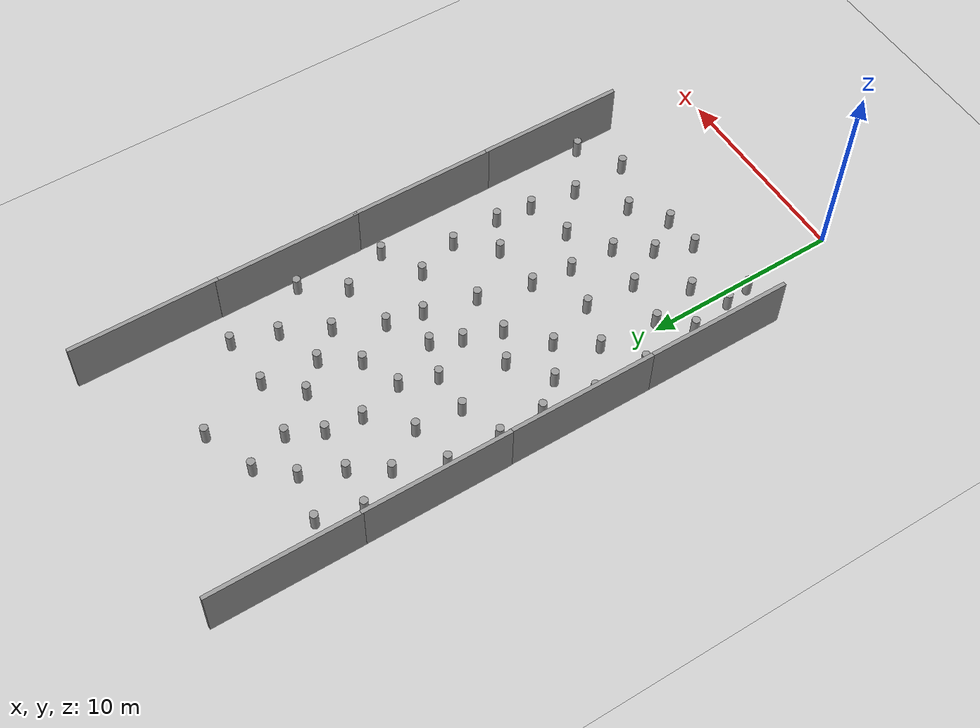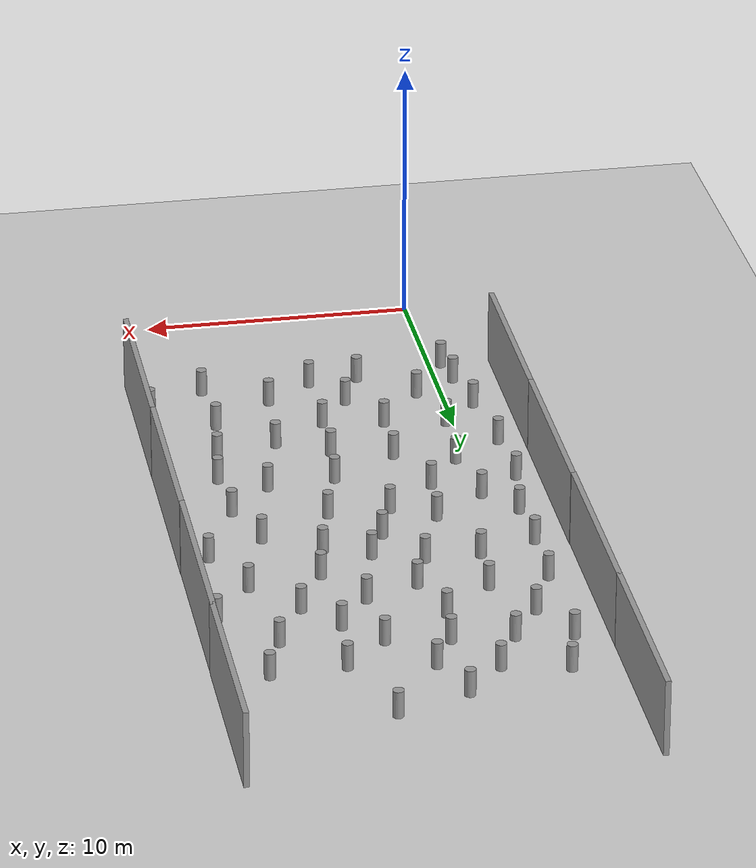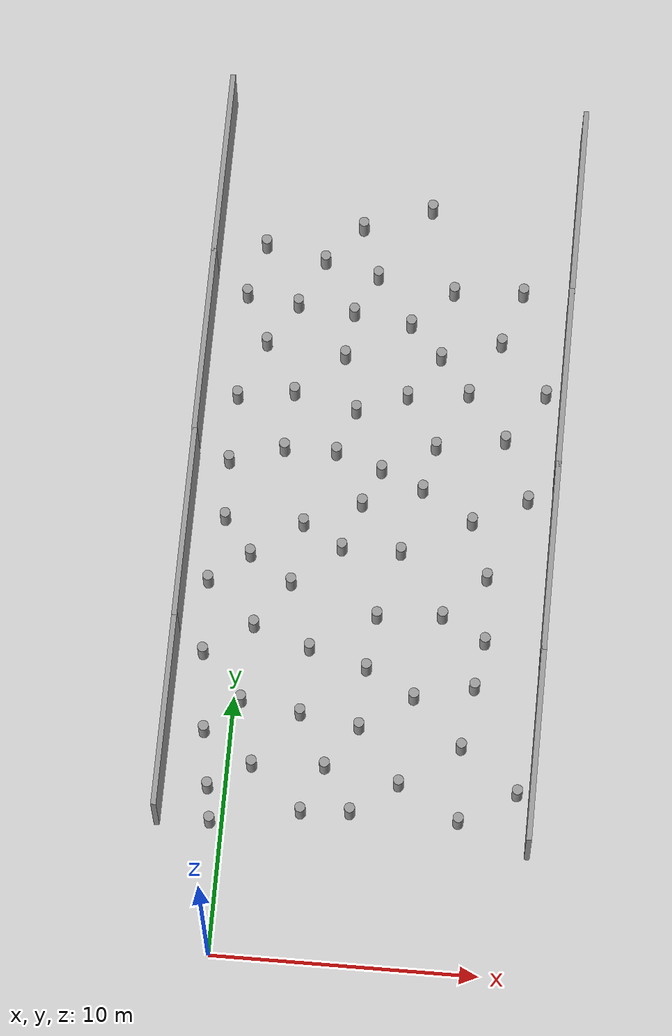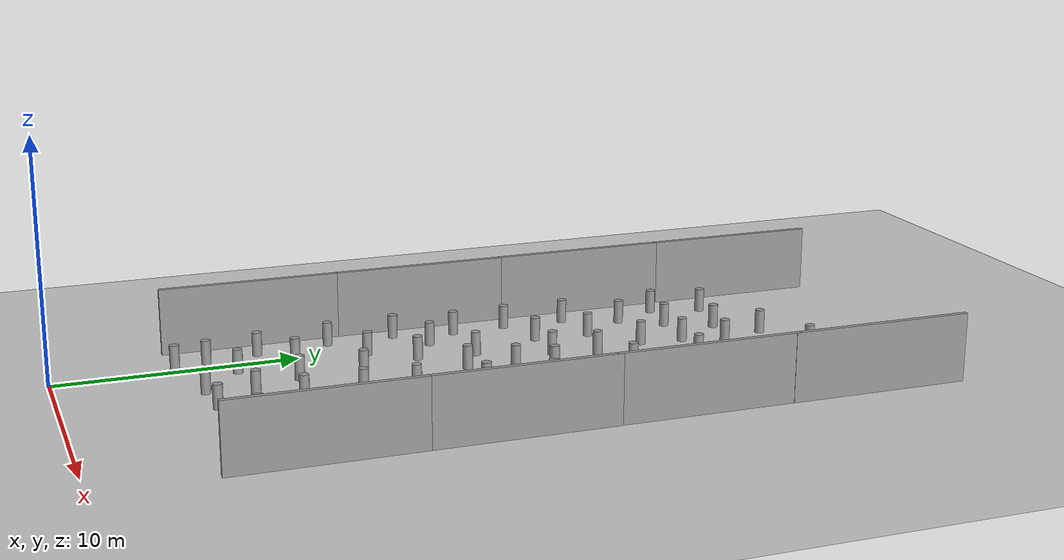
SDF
<sdf version="1.7">
 <world name="default">
  <model name="ground_plane">
   <static>1</static>
   <link name="link">
    <collision name="collision">
     <geometry><plane><normal>0 0 1</normal><size>100 100</size></plane></geometry>
     <surface><friction><ode><mu>100</mu><mu2>50</mu2></ode></friction></surface>
    </collision>
    <visual name="visual">
     <cast_shadows>0</cast_shadows>
     <geometry><plane><normal>0 0 1</normal><size>100 100</size></plane></geometry>
     <material>
      <script><uri>file://media/materials/scripts/gazebo.material</uri><name>Gazebo/Grey</name></script>
     </material>
    </visual>
   </link>
  </model>
  <gravity>0 0 -9.8</gravity>
  <magnetic_field>6e-06 2.3e-05 -4.2e-05</magnetic_field>
  <atmosphere type="adiabatic"/>
  <physics type="ode">
   <max_step_size>0.001</max_step_size>
   <real_time_factor>1</real_time_factor>
   <real_time_update_rate>1000</real_time_update_rate>
  </physics>
  <scene><ambient>0.4 0.4 0.4 1</ambient><background>0.7 0.7 0.7 1</background><shadows>1</shadows></scene>
  <audio><device>default</device></audio>
  <spherical_coordinates>
   <surface_model>EARTH_WGS84</surface_model>
   <latitude_deg>0</latitude_deg>
   <longitude_deg>0</longitude_deg>
   <elevation>0</elevation>
   <heading_deg>0</heading_deg>
  </spherical_coordinates>
  <light name="user_directional_light_0" type="directional">
   <pose>0.477999 -47.7087 1 0 -0 0</pose>
   <diffuse>0.5 0.5 0.5 1</diffuse>
   <specular>0.1 0.1 0.1 1</specular>
   <direction>0.1 0.1 -0.9</direction>
   <attenuation>
    <range>20</range>
    <constant>0.5</constant>
    <linear>0.01</linear>
    <quadratic>0.001</quadratic>
   </attenuation>
   <spot><inner_angle>0</inner_angle><outer_angle>0</outer_angle><falloff>0</falloff></spot>
  </light>
  <light name="user_directional_light_1" type="directional">
   <pose>0.412443 -47.5881 1 0 -0 0</pose>
   <diffuse>0.5 0.5 0.5 1</diffuse>
   <specular>0.1 0.1 0.1 1</specular>
   <direction>0.1 0.1 -0.9</direction>
   <attenuation>
    <range>20</range>
    <constant>0.5</constant>
    <linear>0.01</linear>
    <quadratic>0.001</quadratic>
   </attenuation>
   <spot><inner_angle>0</inner_angle><outer_angle>0</outer_angle><falloff>0</falloff></spot>
  </light>
  <light name="user_directional_light_2" type="directional">
   <pose>0.088321 -47.4159 1 0 -0 0</pose>
   <diffuse>0.5 0.5 0.5 1</diffuse>
   <specular>0.1 0.1 0.1 1</specular>
   <direction>0.1 0.1 -0.9</direction>
   <attenuation>
    <range>20</range>
    <constant>0.5</constant>
    <linear>0.01</linear>
    <quadratic>0.001</quadratic>
   </attenuation>
   <spot><inner_angle>0</inner_angle><outer_angle>0</outer_angle><falloff>0</falloff></spot>
  </light>
  <light name="user_directional_light_3" type="directional">
   <pose>0.088445 -47.4056 1 0 -0 0</pose>
   <diffuse>0.5 0.5 0.5 1</diffuse>
   <specular>0.1 0.1 0.1 1</specular>
   <direction>0.1 0.1 -0.9</direction>
   <attenuation>
    <range>20</range>
    <constant>0.5</constant>
    <linear>0.01</linear>
    <quadratic>0.001</quadratic>
   </attenuation>
   <spot><inner_angle>0</inner_angle><outer_angle>0</outer_angle><falloff>0</falloff></spot>
  </light>
  <light name="user_directional_light_4" type="directional">
   <pose>0.348006 -47.5821 1 0 -0 0</pose>
   <diffuse>0.5 0.5 0.5 1</diffuse>
   <specular>0.1 0.1 0.1 1</specular>
   <direction>0.1 0.1 -0.9</direction>
   <attenuation>
    <range>20</range>
    <constant>0.5</constant>
    <linear>0.01</linear>
    <quadratic>0.001</quadratic>
   </attenuation>
   <spot><inner_angle>0</inner_angle><outer_angle>0</outer_angle><falloff>0</falloff></spot>
  </light>
  <light name="user_directional_light_5" type="directional">
   <pose>0.255718 -47.7811 1 0 -0 0</pose>
   <diffuse>0.5 0.5 0.5 1</diffuse>
   <specular>0.1 0.1 0.1 1</specular>
   <direction>0.1 0.1 -0.9</direction>
   <attenuation>
    <range>20</range>
    <constant>0.5</constant>
    <linear>0.01</linear>
    <quadratic>0.001</quadratic>
   </attenuation>
   <spot><inner_angle>0</inner_angle><outer_angle>0</outer_angle><falloff>0</falloff></spot>
  </light>
  <light name="user_directional_light_6" type="directional">
   <pose>0.17002 -47.8026 1 0 -0 0</pose>
   <diffuse>0.5 0.5 0.5 1</diffuse>
   <specular>0.1 0.1 0.1 1</specular>
   <direction>0.1 0.1 -0.9</direction>
   <attenuation>
    <range>20</range>
    <constant>0.5</constant>
    <linear>0.01</linear>
    <quadratic>0.001</quadratic>
   </attenuation>
   <spot><inner_angle>0</inner_angle><outer_angle>0</outer_angle><falloff>0</falloff></spot>
  </light>
  <model name="unit_cylinder_clone_0">
   <pose>4.78695 9.09994 0.499993 0 -0 1.1e-05</pose>
   <link name="link">
    <inertial>
     <mass>1</mass>
     <inertia><ixx>0.145833</ixx><ixy>0</ixy><ixz>0</ixz><iyy>0.145833</iyy><iyz>0</iyz><izz>0.125</izz></inertia>
    </inertial>
    <collision name="collision">
     <geometry><cylinder><radius>0.19793</radius><length>1</length></cylinder></geometry>
    </collision>
    <visual name="visual">
     <geometry><cylinder><radius>0.19793</radius><length>1</length></cylinder></geometry>
     <material>
      <script><name>Gazebo/Grey</name><uri>file://media/materials/scripts/gazebo.material</uri></script>
     </material>
    </visual>
   </link>
  </model>
  <model name="unit_cylinder_clone_1">
   <pose>2.66479 12.0412 0.499997 0 -0 1.1e-05</pose>
   <link name="link">
    <inertial>
     <mass>1</mass>
     <inertia><ixx>0.145833</ixx><ixy>0</ixy><ixz>0</ixz><iyy>0.145833</iyy><iyz>0</iyz><izz>0.125</izz></inertia>
    </inertial>
    <collision name="collision">
     <geometry><cylinder><radius>0.19793</radius><length>1</length></cylinder></geometry>
    </collision>
    <visual name="visual">
     <geometry><cylinder><radius>0.19793</radius><length>1</length></cylinder></geometry>
     <material>
      <script><name>Gazebo/Grey</name><uri>file://media/materials/scripts/gazebo.material</uri></script>
     </material>
    </visual>
   </link>
  </model>
  <model name="unit_cylinder_clone_2">
   <pose>5.09572 13.5123 0.499993 0 -0 1.1e-05</pose>
   <link name="link">
    <inertial>
     <mass>1</mass>
     <inertia><ixx>0.145833</ixx><ixy>0</ixy><ixz>0</ixz><iyy>0.145833</iyy><iyz>0</iyz><izz>0.125</izz></inertia>
    </inertial>
    <collision name="collision">
     <geometry><cylinder><radius>0.19793</radius><length>1</length></cylinder></geometry>
    </collision>
    <visual name="visual">
     <geometry><cylinder><radius>0.19793</radius><length>1</length></cylinder></geometry>
     <material>
      <script><name>Gazebo/Grey</name><uri>file://media/materials/scripts/gazebo.material</uri></script>
     </material>
    </visual>
   </link>
  </model>
  <model name="unit_cylinder_clone_3">
   <pose>3.5408 16.1391 0.499997 0 -0 1.1e-05</pose>
   <link name="link">
    <inertial>
     <mass>1</mass>
     <inertia><ixx>0.145833</ixx><ixy>0</ixy><ixz>0</ixz><iyy>0.145833</iyy><iyz>0</iyz><izz>0.125</izz></inertia>
    </inertial>
    <collision name="collision">
     <geometry><cylinder><radius>0.19793</radius><length>1</length></cylinder></geometry>
    </collision>
    <visual name="visual">
     <geometry><cylinder><radius>0.19793</radius><length>1</length></cylinder></geometry>
     <material>
      <script><name>Gazebo/Grey</name><uri>file://media/materials/scripts/gazebo.material</uri></script>
     </material>
    </visual>
   </link>
  </model>
  <model name="unit_cylinder_clone_4">
   <pose>0.487119 12.7888 0.499993 0 -0 1.1e-05</pose>
   <link name="link">
    <inertial>
     <mass>1</mass>
     <inertia><ixx>0.145833</ixx><ixy>0</ixy><ixz>0</ixz><iyy>0.145833</iyy><iyz>0</iyz><izz>0.125</izz></inertia>
    </inertial>
    <collision name="collision">
     <geometry><cylinder><radius>0.19793</radius><length>1</length></cylinder></geometry>
    </collision>
    <visual name="visual">
     <geometry><cylinder><radius>0.19793</radius><length>1</length></cylinder></geometry>
     <material>
      <script><name>Gazebo/Grey</name><uri>file://media/materials/scripts/gazebo.material</uri></script>
     </material>
    </visual>
   </link>
  </model>
  <model name="unit_cylinder_clone_5">
   <pose>0.274245 9.79924 0.499997 0 -0 1.1e-05</pose>
   <link name="link">
    <inertial>
     <mass>1</mass>
     <inertia><ixx>0.145833</ixx><ixy>0</ixy><ixz>0</ixz><iyy>0.145833</iyy><iyz>0</iyz><izz>0.125</izz></inertia>
    </inertial>
    <collision name="collision">
     <geometry><cylinder><radius>0.19793</radius><length>1</length></cylinder></geometry>
    </collision>
    <visual name="visual">
     <geometry><cylinder><radius>0.19793</radius><length>1</length></cylinder></geometry>
     <material>
      <script><name>Gazebo/Grey</name><uri>file://media/materials/scripts/gazebo.material</uri></script>
     </material>
    </visual>
   </link>
  </model>
  <model name="unit_cylinder_clone_6">
   <pose>-1 8.49556 0.499993 0 -0 1.1e-05</pose>
   <link name="link">
    <inertial>
     <mass>1</mass>
     <inertia><ixx>0.145833</ixx><ixy>0</ixy><ixz>0</ixz><iyy>0.145833</iyy><iyz>0</iyz><izz>0.125</izz></inertia>
    </inertial>
    <collision name="collision">
     <geometry><cylinder><radius>0.19793</radius><length>1</length></cylinder></geometry>
    </collision>
    <visual name="visual">
     <geometry><cylinder><radius>0.19793</radius><length>1</length></cylinder></geometry>
     <material>
      <script><name>Gazebo/Grey</name><uri>file://media/materials/scripts/gazebo.material</uri></script>
     </material>
    </visual>
   </link>
  </model>
  <model name="unit_cylinder_clone_7">
   <pose>6.74765 10.429 0.499997 0 -0 1.1e-05</pose>
   <link name="link">
    <inertial>
     <mass>1</mass>
     <inertia><ixx>0.145833</ixx><ixy>0</ixy><ixz>0</ixz><iyy>0.145833</iyy><iyz>0</iyz><izz>0.125</izz></inertia>
    </inertial>
    <collision name="collision">
     <geometry><cylinder><radius>0.19793</radius><length>1</length></cylinder></geometry>
    </collision>
    <visual name="visual">
     <geometry><cylinder><radius>0.19793</radius><length>1</length></cylinder></geometry>
     <material>
      <script><name>Gazebo/Grey</name><uri>file://media/materials/scripts/gazebo.material</uri></script>
     </material>
    </visual>
   </link>
  </model>
  <model name="unit_cylinder_clone_8">
   <pose>7.57568 13.7201 0.499993 0 -0 1.1e-05</pose>
   <link name="link">
    <inertial>
     <mass>1</mass>
     <inertia><ixx>0.145833</ixx><ixy>0</ixy><ixz>0</ixz><iyy>0.145833</iyy><iyz>0</iyz><izz>0.125</izz></inertia>
    </inertial>
    <collision name="collision">
     <geometry><cylinder><radius>0.19793</radius><length>1</length></cylinder></geometry>
    </collision>
    <visual name="visual">
     <geometry><cylinder><radius>0.19793</radius><length>1</length></cylinder></geometry>
     <material>
      <script><name>Gazebo/Grey</name><uri>file://media/materials/scripts/gazebo.material</uri></script>
     </material>
    </visual>
   </link>
  </model>
  <model name="unit_cylinder_clone_9">
   <pose>6.42971 18.7387 0.499997 0 -0 1.1e-05</pose>
   <link name="link">
    <inertial>
     <mass>1</mass>
     <inertia><ixx>0.145833</ixx><ixy>0</ixy><ixz>0</ixz><iyy>0.145833</iyy><iyz>0</iyz><izz>0.125</izz></inertia>
    </inertial>
    <collision name="collision">
     <geometry><cylinder><radius>0.19793</radius><length>1</length></cylinder></geometry>
    </collision>
    <visual name="visual">
     <geometry><cylinder><radius>0.19793</radius><length>1</length></cylinder></geometry>
     <material>
      <script><name>Gazebo/Grey</name><uri>file://media/materials/scripts/gazebo.material</uri></script>
     </material>
    </visual>
   </link>
  </model>
  <model name="unit_cylinder_clone_10">
   <pose>1 20 0.499993 0 -0 1e-05</pose>
   <link name="link">
    <inertial>
     <mass>1</mass>
     <inertia><ixx>0.145833</ixx><ixy>0</ixy><ixz>0</ixz><iyy>0.145833</iyy><iyz>0</iyz><izz>0.125</izz></inertia>
    </inertial>
    <collision name="collision">
     <geometry><cylinder><radius>0.19793</radius><length>1</length></cylinder></geometry>
    </collision>
    <visual name="visual">
     <geometry><cylinder><radius>0.19793</radius><length>1</length></cylinder></geometry>
     <material>
      <script><name>Gazebo/Grey</name><uri>file://media/materials/scripts/gazebo.material</uri></script>
     </material>
    </visual>
   </link>
  </model>
  <model name="unit_cylinder_clone_11">
   <pose>3 20 0.499993 0 -0 1e-05</pose>
   <link name="link">
    <inertial>
     <mass>1</mass>
     <inertia><ixx>0.145833</ixx><ixy>0</ixy><ixz>0</ixz><iyy>0.145833</iyy><iyz>0</iyz><izz>0.125</izz></inertia>
    </inertial>
    <collision name="collision">
     <geometry><cylinder><radius>0.19793</radius><length>1</length></cylinder></geometry>
    </collision>
    <visual name="visual">
     <geometry><cylinder><radius>0.19793</radius><length>1</length></cylinder></geometry>
     <material>
      <script><name>Gazebo/Grey</name><uri>file://media/materials/scripts/gazebo.material</uri></script>
     </material>
    </visual>
   </link>
  </model>
  <model name="unit_cylinder_clone_12">
   <pose>5.5409 22.5279 0.499993 0 -0 1e-05</pose>
   <link name="link">
    <inertial>
     <mass>1</mass>
     <inertia><ixx>0.145833</ixx><ixy>0</ixy><ixz>0</ixz><iyy>0.145833</iyy><iyz>0</iyz><izz>0.125</izz></inertia>
    </inertial>
    <collision name="collision">
     <geometry><cylinder><radius>0.19793</radius><length>1</length></cylinder></geometry>
    </collision>
    <visual name="visual">
     <geometry><cylinder><radius>0.19793</radius><length>1</length></cylinder></geometry>
     <material>
      <script><name>Gazebo/Grey</name><uri>file://media/materials/scripts/gazebo.material</uri></script>
     </material>
    </visual>
   </link>
  </model>
  <model name="unit_cylinder_clone_13">
   <pose>2 17 0.499993 0 -0 1e-05</pose>
   <link name="link">
    <inertial>
     <mass>1</mass>
     <inertia><ixx>0.145833</ixx><ixy>0</ixy><ixz>0</ixz><iyy>0.145833</iyy><iyz>0</iyz><izz>0.125</izz></inertia>
    </inertial>
    <collision name="collision">
     <geometry><cylinder><radius>0.19793</radius><length>1</length></cylinder></geometry>
    </collision>
    <visual name="visual">
     <geometry><cylinder><radius>0.19793</radius><length>1</length></cylinder></geometry>
     <material>
      <script><name>Gazebo/Grey</name><uri>file://media/materials/scripts/gazebo.material</uri></script>
     </material>
    </visual>
   </link>
  </model>
  <model name="unit_cylinder_clone_14">
   <pose>-1 17 0.499997 0 -0 1e-05</pose>
   <link name="link">
    <inertial>
     <mass>1</mass>
     <inertia><ixx>0.145833</ixx><ixy>0</ixy><ixz>0</ixz><iyy>0.145833</iyy><iyz>0</iyz><izz>0.125</izz></inertia>
    </inertial>
    <collision name="collision">
     <geometry><cylinder><radius>0.19793</radius><length>1</length></cylinder></geometry>
    </collision>
    <visual name="visual">
     <geometry><cylinder><radius>0.19793</radius><length>1</length></cylinder></geometry>
     <material>
      <script><name>Gazebo/Grey</name><uri>file://media/materials/scripts/gazebo.material</uri></script>
     </material>
    </visual>
   </link>
  </model>
  <model name="unit_cylinder_clone_15">
   <pose>-1 22 0.499997 0 -0 1e-05</pose>
   <link name="link">
    <inertial>
     <mass>1</mass>
     <inertia><ixx>0.145833</ixx><ixy>0</ixy><ixz>0</ixz><iyy>0.145833</iyy><iyz>0</iyz><izz>0.125</izz></inertia>
    </inertial>
    <collision name="collision">
     <geometry><cylinder><radius>0.19793</radius><length>1</length></cylinder></geometry>
    </collision>
    <visual name="visual">
     <geometry><cylinder><radius>0.19793</radius><length>1</length></cylinder></geometry>
     <material>
      <script><name>Gazebo/Grey</name><uri>file://media/materials/scripts/gazebo.material</uri></script>
     </material>
    </visual>
   </link>
  </model>
  <model name="unit_cylinder_clone_16">
   <pose>1 26 0.499997 0 -0 1e-05</pose>
   <link name="link">
    <inertial>
     <mass>1</mass>
     <inertia><ixx>0.145833</ixx><ixy>0</ixy><ixz>0</ixz><iyy>0.145833</iyy><iyz>0</iyz><izz>0.125</izz></inertia>
    </inertial>
    <collision name="collision">
     <geometry><cylinder><radius>0.19793</radius><length>1</length></cylinder></geometry>
    </collision>
    <visual name="visual">
     <geometry><cylinder><radius>0.19793</radius><length>1</length></cylinder></geometry>
     <material>
      <script><name>Gazebo/Grey</name><uri>file://media/materials/scripts/gazebo.material</uri></script>
     </material>
    </visual>
   </link>
  </model>
  <model name="unit_cylinder_clone_17">
   <pose>4 27.4252 0.499997 0 -0 1e-05</pose>
   <link name="link">
    <inertial>
     <mass>1</mass>
     <inertia><ixx>0.145833</ixx><ixy>0</ixy><ixz>0</ixz><iyy>0.145833</iyy><iyz>0</iyz><izz>0.125</izz></inertia>
    </inertial>
    <collision name="collision">
     <geometry><cylinder><radius>0.19793</radius><length>1</length></cylinder></geometry>
    </collision>
    <visual name="visual">
     <geometry><cylinder><radius>0.19793</radius><length>1</length></cylinder></geometry>
     <material>
      <script><name>Gazebo/Grey</name><uri>file://media/materials/scripts/gazebo.material</uri></script>
     </material>
    </visual>
   </link>
  </model>
  <model name="unit_cylinder_clone_18">
   <pose>7 27 0.499993 0 -0 1e-05</pose>
   <link name="link">
    <inertial>
     <mass>1</mass>
     <inertia><ixx>0.145833</ixx><ixy>0</ixy><ixz>0</ixz><iyy>0.145833</iyy><iyz>0</iyz><izz>0.125</izz></inertia>
    </inertial>
    <collision name="collision">
     <geometry><cylinder><radius>0.19793</radius><length>1</length></cylinder></geometry>
    </collision>
    <visual name="visual">
     <geometry><cylinder><radius>0.19793</radius><length>1</length></cylinder></geometry>
     <material>
      <script><name>Gazebo/Grey</name><uri>file://media/materials/scripts/gazebo.material</uri></script>
     </material>
    </visual>
   </link>
  </model>
  <model name="unit_cylinder_clone_19">
   <pose>9 25 0.499997 0 -0 1e-05</pose>
   <link name="link">
    <inertial>
     <mass>1</mass>
     <inertia><ixx>0.145833</ixx><ixy>0</ixy><ixz>0</ixz><iyy>0.145833</iyy><iyz>0</iyz><izz>0.125</izz></inertia>
    </inertial>
    <collision name="collision">
     <geometry><cylinder><radius>0.19793</radius><length>1</length></cylinder></geometry>
    </collision>
    <visual name="visual">
     <geometry><cylinder><radius>0.19793</radius><length>1</length></cylinder></geometry>
     <material>
      <script><name>Gazebo/Grey</name><uri>file://media/materials/scripts/gazebo.material</uri></script>
     </material>
    </visual>
   </link>
  </model>
  <model name="unit_cylinder_clone_20">
   <pose>9.43338 21 0.499997 0 -0 1e-05</pose>
   <link name="link">
    <inertial>
     <mass>1</mass>
     <inertia><ixx>0.145833</ixx><ixy>0</ixy><ixz>0</ixz><iyy>0.145833</iyy><iyz>0</iyz><izz>0.125</izz></inertia>
    </inertial>
    <collision name="collision">
     <geometry><cylinder><radius>0.19793</radius><length>1</length></cylinder></geometry>
    </collision>
    <visual name="visual">
     <geometry><cylinder><radius>0.19793</radius><length>1</length></cylinder></geometry>
     <material>
      <script><name>Gazebo/Grey</name><uri>file://media/materials/scripts/gazebo.material</uri></script>
     </material>
    </visual>
   </link>
  </model>
  <model name="unit_cylinder_clone_21">
   <pose>8.41458 17.5736 0.499997 0 -0 1e-05</pose>
   <link name="link">
    <inertial>
     <mass>1</mass>
     <inertia><ixx>0.145833</ixx><ixy>0</ixy><ixz>0</ixz><iyy>0.145833</iyy><iyz>0</iyz><izz>0.125</izz></inertia>
    </inertial>
    <collision name="collision">
     <geometry><cylinder><radius>0.19793</radius><length>1</length></cylinder></geometry>
    </collision>
    <visual name="visual">
     <geometry><cylinder><radius>0.19793</radius><length>1</length></cylinder></geometry>
     <material>
      <script><name>Gazebo/Grey</name><uri>file://media/materials/scripts/gazebo.material</uri></script>
     </material>
    </visual>
   </link>
  </model>
  <model name="unit_cylinder_clone_22">
   <pose>3 24 0.499993 0 -0 1e-05</pose>
   <link name="link">
    <inertial>
     <mass>1</mass>
     <inertia><ixx>0.145833</ixx><ixy>0</ixy><ixz>0</ixz><iyy>0.145833</iyy><iyz>0</iyz><izz>0.125</izz></inertia>
    </inertial>
    <collision name="collision">
     <geometry><cylinder><radius>0.19793</radius><length>1</length></cylinder></geometry>
    </collision>
    <visual name="visual">
     <geometry><cylinder><radius>0.19793</radius><length>1</length></cylinder></geometry>
     <material>
      <script><name>Gazebo/Grey</name><uri>file://media/materials/scripts/gazebo.material</uri></script>
     </material>
    </visual>
   </link>
  </model>
  <model name="unit_cylinder_clone_23">
   <pose>-0.451325 5.01047 0.499997 0 -0 1e-05</pose>
   <link name="link">
    <inertial>
     <mass>1</mass>
     <inertia><ixx>0.145833</ixx><ixy>0</ixy><ixz>0</ixz><iyy>0.145833</iyy><iyz>0</iyz><izz>0.125</izz></inertia>
    </inertial>
    <collision name="collision">
     <geometry><cylinder><radius>0.19793</radius><length>1</length></cylinder></geometry>
    </collision>
    <visual name="visual">
     <geometry><cylinder><radius>0.19793</radius><length>1</length></cylinder></geometry>
     <material>
      <script><name>Gazebo/Grey</name><uri>file://media/materials/scripts/gazebo.material</uri></script>
     </material>
    </visual>
   </link>
  </model>
  <model name="unit_cylinder_clone_24">
   <pose>-0.657877 6.32538 0.499997 0 -0 1e-05</pose>
   <link name="link">
    <inertial>
     <mass>1</mass>
     <inertia><ixx>0.145833</ixx><ixy>0</ixy><ixz>0</ixz><iyy>0.145833</iyy><iyz>0</iyz><izz>0.125</izz></inertia>
    </inertial>
    <collision name="collision">
     <geometry><cylinder><radius>0.19793</radius><length>1</length></cylinder></geometry>
    </collision>
    <visual name="visual">
     <geometry><cylinder><radius>0.19793</radius><length>1</length></cylinder></geometry>
     <material>
      <script><name>Gazebo/Grey</name><uri>file://media/materials/scripts/gazebo.material</uri></script>
     </material>
    </visual>
   </link>
  </model>
  <model name="unit_cylinder_clone_25">
   <pose>4.7253 5.7723 0.499993 0 -0 1e-05</pose>
   <link name="link">
    <inertial>
     <mass>1</mass>
     <inertia><ixx>0.145833</ixx><ixy>0</ixy><ixz>0</ixz><iyy>0.145833</iyy><iyz>0</iyz><izz>0.125</izz></inertia>
    </inertial>
    <collision name="collision">
     <geometry><cylinder><radius>0.19793</radius><length>1</length></cylinder></geometry>
    </collision>
    <visual name="visual">
     <geometry><cylinder><radius>0.19793</radius><length>1</length></cylinder></geometry>
     <material>
      <script><name>Gazebo/Grey</name><uri>file://media/materials/scripts/gazebo.material</uri></script>
     </material>
    </visual>
   </link>
  </model>
  <model name="unit_cylinder_clone_26">
   <pose>6.44838 7 0.499993 0 -0 9e-06</pose>
   <link name="link">
    <inertial>
     <mass>1</mass>
     <inertia><ixx>0.145833</ixx><ixy>0</ixy><ixz>0</ixz><iyy>0.145833</iyy><iyz>0</iyz><izz>0.125</izz></inertia>
    </inertial>
    <collision name="collision">
     <geometry><cylinder><radius>0.19793</radius><length>1</length></cylinder></geometry>
    </collision>
    <visual name="visual">
     <geometry><cylinder><radius>0.19793</radius><length>1</length></cylinder></geometry>
     <material>
      <script><name>Gazebo/Grey</name><uri>file://media/materials/scripts/gazebo.material</uri></script>
     </material>
    </visual>
   </link>
  </model>
  <model name="unit_cylinder_clone_27">
   <pose>2.53815 9.45269 0.499997 0 -0 9e-06</pose>
   <link name="link">
    <inertial>
     <mass>1</mass>
     <inertia><ixx>0.145833</ixx><ixy>0</ixy><ixz>0</ixz><iyy>0.145833</iyy><iyz>0</iyz><izz>0.125</izz></inertia>
    </inertial>
    <collision name="collision">
     <geometry><cylinder><radius>0.19793</radius><length>1</length></cylinder></geometry>
    </collision>
    <visual name="visual">
     <geometry><cylinder><radius>0.19793</radius><length>1</length></cylinder></geometry>
     <material>
      <script><name>Gazebo/Grey</name><uri>file://media/materials/scripts/gazebo.material</uri></script>
     </material>
    </visual>
   </link>
  </model>
  <model name="unit_cylinder_clone_28">
   <pose>5.79612 16.1516 0.499993 0 -0 9e-06</pose>
   <link name="link">
    <inertial>
     <mass>1</mass>
     <inertia><ixx>0.145833</ixx><ixy>0</ixy><ixz>0</ixz><iyy>0.145833</iyy><iyz>0</iyz><izz>0.125</izz></inertia>
    </inertial>
    <collision name="collision">
     <geometry><cylinder><radius>0.19793</radius><length>1</length></cylinder></geometry>
    </collision>
    <visual name="visual">
     <geometry><cylinder><radius>0.19793</radius><length>1</length></cylinder></geometry>
     <material>
      <script><name>Gazebo/Grey</name><uri>file://media/materials/scripts/gazebo.material</uri></script>
     </material>
    </visual>
   </link>
  </model>
  <model name="unit_cylinder_clone">
   <pose>0.908682 7.30719 0.499997 0 -0 9e-06</pose>
   <link name="link">
    <inertial>
     <mass>1</mass>
     <inertia><ixx>0.145833</ixx><ixy>0</ixy><ixz>0</ixz><iyy>0.145833</iyy><iyz>0</iyz><izz>0.125</izz></inertia>
    </inertial>
    <collision name="collision">
     <geometry><cylinder><radius>0.19793</radius><length>1</length></cylinder></geometry>
    </collision>
    <visual name="visual">
     <geometry><cylinder><radius>0.19793</radius><length>1</length></cylinder></geometry>
     <material>
      <script><name>Gazebo/Grey</name><uri>file://media/materials/scripts/gazebo.material</uri></script>
     </material>
    </visual>
   </link>
  </model>
  <model name="unit_cylinder_clone_clone">
   <pose>2.88935 5.6457 0.499993 0 -0 9e-06</pose>
   <link name="link">
    <inertial>
     <mass>1</mass>
     <inertia><ixx>0.145833</ixx><ixy>0</ixy><ixz>0</ixz><iyy>0.145833</iyy><iyz>0</iyz><izz>0.125</izz></inertia>
    </inertial>
    <collision name="collision">
     <geometry><cylinder><radius>0.19793</radius><length>1</length></cylinder></geometry>
    </collision>
    <visual name="visual">
     <geometry><cylinder><radius>0.19793</radius><length>1</length></cylinder></geometry>
     <material>
      <script><name>Gazebo/Grey</name><uri>file://media/materials/scripts/gazebo.material</uri></script>
     </material>
    </visual>
   </link>
  </model>
  <model name="unit_cylinder_clone_clone_0">
   <pose>4.79174 19.4083 0.499997 0 -0 8e-06</pose>
   <link name="link">
    <inertial>
     <mass>1</mass>
     <inertia><ixx>0.145833</ixx><ixy>0</ixy><ixz>0</ixz><iyy>0.145833</iyy><iyz>0</iyz><izz>0.125</izz></inertia>
    </inertial>
    <collision name="collision">
     <geometry><cylinder><radius>0.19793</radius><length>1</length></cylinder></geometry>
    </collision>
    <visual name="visual">
     <geometry><cylinder><radius>0.19793</radius><length>1</length></cylinder></geometry>
     <material>
      <script><name>Gazebo/Grey</name><uri>file://media/materials/scripts/gazebo.material</uri></script>
     </material>
    </visual>
   </link>
  </model>
  <model name="unit_cylinder_clone_clone_1">
   <pose>5.88802 30.4158 0.499993 0 -0 8e-06</pose>
   <link name="link">
    <inertial>
     <mass>1</mass>
     <inertia><ixx>0.145833</ixx><ixy>0</ixy><ixz>0</ixz><iyy>0.145833</iyy><iyz>0</iyz><izz>0.125</izz></inertia>
    </inertial>
    <collision name="collision">
     <geometry><cylinder><radius>0.19793</radius><length>1</length></cylinder></geometry>
    </collision>
    <visual name="visual">
     <geometry><cylinder><radius>0.19793</radius><length>1</length></cylinder></geometry>
     <material>
      <script><name>Gazebo/Grey</name><uri>file://media/materials/scripts/gazebo.material</uri></script>
     </material>
    </visual>
   </link>
  </model>
  <model name="unit_cylinder_clone_clone_2">
   <pose>5.44269 25.5025 0.499997 0 -0 8e-06</pose>
   <link name="link">
    <inertial>
     <mass>1</mass>
     <inertia><ixx>0.145833</ixx><ixy>0</ixy><ixz>0</ixz><iyy>0.145833</iyy><iyz>0</iyz><izz>0.125</izz></inertia>
    </inertial>
    <collision name="collision">
     <geometry><cylinder><radius>0.19793</radius><length>1</length></cylinder></geometry>
    </collision>
    <visual name="visual">
     <geometry><cylinder><radius>0.19793</radius><length>1</length></cylinder></geometry>
     <material>
      <script><name>Gazebo/Grey</name><uri>file://media/materials/scripts/gazebo.material</uri></script>
     </material>
    </visual>
   </link>
  </model>
  <model name="grey_wall">
   <static>1</static>
   <link name="link">
    <pose>0 0 1.4 0 -0 0</pose>
    <collision name="collision"><geometry><box><size>7.5 0.2 2.8</size></box></geometry></collision>
    <visual name="visual">
     <cast_shadows>0</cast_shadows>
     <geometry><box><size>7.5 0.2 2.8</size></box></geometry>
     <material>
      <script>
       <uri>model://grey_wall/materials/scripts</uri>
       <uri>model://grey_wall/materials/textures</uri>
       <name>vrc/grey_wall</name>
      </script>
     </material>
    </visual>
   </link>
   <pose>-2.39844 8.54275 0 0 -0 1.56588</pose>
  </model>
  <model name="grey_wall_clone">
   <static>1</static>
   <link name="link">
    <pose>0 0 1.4 0 -0 0</pose>
    <collision name="collision"><geometry><box><size>7.5 0.2 2.8</size></box></geometry></collision>
    <visual name="visual">
     <cast_shadows>0</cast_shadows>
     <geometry><box><size>7.5 0.2 2.8</size></box></geometry>
     <material>
      <script>
       <uri>model://grey_wall/materials/scripts</uri>
       <uri>model://grey_wall/materials/textures</uri>
       <name>vrc/grey_wall</name>
      </script>
     </material>
    </visual>
   </link>
   <pose>-2.36658 15.9118 0 0 -0 1.56588</pose>
  </model>
  <model name="grey_wall_clone_0">
   <static>1</static>
   <link name="link">
    <pose>0 0 1.4 0 -0 0</pose>
    <collision name="collision"><geometry><box><size>7.5 0.2 2.8</size></box></geometry></collision>
    <visual name="visual">
     <cast_shadows>0</cast_shadows>
     <geometry><box><size>7.5 0.2 2.8</size></box></geometry>
     <material>
      <script>
       <uri>model://grey_wall/materials/scripts</uri>
       <uri>model://grey_wall/materials/textures</uri>
       <name>vrc/grey_wall</name>
      </script>
     </material>
    </visual>
   </link>
   <pose>-2.34973 23.3212 0 0 -0 1.56588</pose>
  </model>
  <model name="grey_wall_clone_1">
   <static>1</static>
   <link name="link">
    <pose>0 0 1.4 0 -0 0</pose>
    <collision name="collision"><geometry><box><size>7.5 0.2 2.8</size></box></geometry></collision>
    <visual name="visual">
     <cast_shadows>0</cast_shadows>
     <geometry><box><size>7.5 0.2 2.8</size></box></geometry>
     <material>
      <script>
       <uri>model://grey_wall/materials/scripts</uri>
       <uri>model://grey_wall/materials/textures</uri>
       <name>vrc/grey_wall</name>
      </script>
     </material>
    </visual>
   </link>
   <pose>-2.31725 30.7263 0 0 -0 1.56588</pose>
  </model>
  <model name="grey_wall_clone_2">
   <static>1</static>
   <link name="link">
    <pose>0 0 1.4 0 -0 0</pose>
    <collision name="collision"><geometry><box><size>7.5 0.2 2.8</size></box></geometry></collision>
    <visual name="visual">
     <cast_shadows>0</cast_shadows>
     <geometry><box><size>7.5 0.2 2.8</size></box></geometry>
     <material>
      <script>
       <uri>model://grey_wall/materials/scripts</uri>
       <uri>model://grey_wall/materials/textures</uri>
       <name>vrc/grey_wall</name>
      </script>
     </material>
    </visual>
   </link>
   <pose>11.4512 8.3445 0 0 -0 1.56588</pose>
  </model>
  <model name="grey_wall_clone_3">
   <static>1</static>
   <link name="link">
    <pose>0 0 1.4 0 -0 0</pose>
    <collision name="collision"><geometry><box><size>7.5 0.2 2.8</size></box></geometry></collision>
    <visual name="visual">
     <cast_shadows>0</cast_shadows>
     <geometry><box><size>7.5 0.2 2.8</size></box></geometry>
     <material>
      <script>
       <uri>model://grey_wall/materials/scripts</uri>
       <uri>model://grey_wall/materials/textures</uri>
       <name>vrc/grey_wall</name>
      </script>
     </material>
    </visual>
   </link>
   <pose>11.4816 15.7102 0 0 -0 1.56588</pose>
  </model>
  <model name="grey_wall_clone_4">
   <static>1</static>
   <link name="link">
    <pose>0 0 1.4 0 -0 0</pose>
    <collision name="collision"><geometry><box><size>7.5 0.2 2.8</size></box></geometry></collision>
    <visual name="visual">
     <cast_shadows>0</cast_shadows>
     <geometry><box><size>7.5 0.2 2.8</size></box></geometry>
     <material>
      <script>
       <uri>model://grey_wall/materials/scripts</uri>
       <uri>model://grey_wall/materials/textures</uri>
       <name>vrc/grey_wall</name>
      </script>
     </material>
    </visual>
   </link>
   <pose>11.5057 22.9843 0 0 -0 1.56588</pose>
  </model>
  <model name="grey_wall_clone_5">
   <static>1</static>
   <link name="link">
    <pose>0 0 1.4 0 -0 0</pose>
    <collision name="collision"><geometry><box><size>7.5 0.2 2.8</size></box></geometry></collision>
    <visual name="visual">
     <cast_shadows>0</cast_shadows>
     <geometry><box><size>7.5 0.2 2.8</size></box></geometry>
     <material>
      <script>
       <uri>model://grey_wall/materials/scripts</uri>
       <uri>model://grey_wall/materials/textures</uri>
       <name>vrc/grey_wall</name>
      </script>
     </material>
    </visual>
   </link>
   <pose>11.553 30.2985 0 0 -0 1.56588</pose>
  </model>
  <model name="unit_cylinder_clone_7_clone">
   <pose>8.67768 8.61634 0.499991 0 -0 1e-05</pose>
   <link name="link">
    <inertial>
     <mass>1</mass>
     <inertia><ixx>0.145833</ixx><ixy>0</ixy><ixz>0</ixz><iyy>0.145833</iyy><iyz>0</iyz><izz>0.125</izz></inertia>
    </inertial>
    <collision name="collision">
     <geometry><cylinder><radius>0.19793</radius><length>1</length></cylinder></geometry>
    </collision>
    <visual name="visual">
     <geometry><cylinder><radius>0.19793</radius><length>1</length></cylinder></geometry>
     <material>
      <script><name>Gazebo/Grey</name><uri>file://media/materials/scripts/gazebo.material</uri></script>
     </material>
    </visual>
   </link>
  </model>
  <model name="unit_cylinder_clone_7_clone_0">
   <pose>8.78048 5.73694 0.499999 0 -0 1e-05</pose>
   <link name="link">
    <inertial>
     <mass>1</mass>
     <inertia><ixx>0.145833</ixx><ixy>0</ixy><ixz>0</ixz><iyy>0.145833</iyy><iyz>0</iyz><izz>0.125</izz></inertia>
    </inertial>
    <collision name="collision">
     <geometry><cylinder><radius>0.19793</radius><length>1</length></cylinder></geometry>
    </collision>
    <visual name="visual">
     <geometry><cylinder><radius>0.19793</radius><length>1</length></cylinder></geometry>
     <material>
      <script><name>Gazebo/Grey</name><uri>file://media/materials/scripts/gazebo.material</uri></script>
     </material>
    </visual>
   </link>
  </model>
  <model name="unit_cylinder_clone_7_clone_1">
   <pose>9.25324 12.8305 0.499999 0 -0 1e-05</pose>
   <link name="link">
    <inertial>
     <mass>1</mass>
     <inertia><ixx>0.145833</ixx><ixy>0</ixy><ixz>0</ixz><iyy>0.145833</iyy><iyz>0</iyz><izz>0.125</izz></inertia>
    </inertial>
    <collision name="collision">
     <geometry><cylinder><radius>0.19793</radius><length>1</length></cylinder></geometry>
    </collision>
    <visual name="visual">
     <geometry><cylinder><radius>0.19793</radius><length>1</length></cylinder></geometry>
     <material>
      <script><name>Gazebo/Grey</name><uri>file://media/materials/scripts/gazebo.material</uri></script>
     </material>
    </visual>
   </link>
  </model>
  <model name="unit_cylinder_clone_7_clone_2">
   <pose>9 11 0.499991 0 -0 1e-05</pose>
   <link name="link">
    <inertial>
     <mass>1</mass>
     <inertia><ixx>0.145833</ixx><ixy>0</ixy><ixz>0</ixz><iyy>0.145833</iyy><iyz>0</iyz><izz>0.125</izz></inertia>
    </inertial>
    <collision name="collision">
     <geometry><cylinder><radius>0.19793</radius><length>1</length></cylinder></geometry>
    </collision>
    <visual name="visual">
     <geometry><cylinder><radius>0.19793</radius><length>1</length></cylinder></geometry>
     <material>
      <script><name>Gazebo/Grey</name><uri>file://media/materials/scripts/gazebo.material</uri></script>
     </material>
    </visual>
   </link>
  </model>
  <model name="unit_cylinder_clone_7_clone_3">
   <pose>9.14097 15.3869 0.499991 0 -0 1e-05</pose>
   <link name="link">
    <inertial>
     <mass>1</mass>
     <inertia><ixx>0.145833</ixx><ixy>0</ixy><ixz>0</ixz><iyy>0.145833</iyy><iyz>0</iyz><izz>0.125</izz></inertia>
    </inertial>
    <collision name="collision">
     <geometry><cylinder><radius>0.19793</radius><length>1</length></cylinder></geometry>
    </collision>
    <visual name="visual">
     <geometry><cylinder><radius>0.19793</radius><length>1</length></cylinder></geometry>
     <material>
      <script><name>Gazebo/Grey</name><uri>file://media/materials/scripts/gazebo.material</uri></script>
     </material>
    </visual>
   </link>
  </model>
  <model name="unit_cylinder_clone_7_clone_4">
   <pose>1.73836 14.5838 0.499999 0 -0 1e-05</pose>
   <link name="link">
    <inertial>
     <mass>1</mass>
     <inertia><ixx>0.145833</ixx><ixy>0</ixy><ixz>0</ixz><iyy>0.145833</iyy><iyz>0</iyz><izz>0.125</izz></inertia>
    </inertial>
    <collision name="collision">
     <geometry><cylinder><radius>0.19793</radius><length>1</length></cylinder></geometry>
    </collision>
    <visual name="visual">
     <geometry><cylinder><radius>0.19793</radius><length>1</length></cylinder></geometry>
     <material>
      <script><name>Gazebo/Grey</name><uri>file://media/materials/scripts/gazebo.material</uri></script>
     </material>
    </visual>
   </link>
  </model>
  <model name="unit_cylinder_clone_7_clone_5">
   <pose>-1.40999 14.4263 0.499999 0 -0 1e-05</pose>
   <link name="link">
    <inertial>
     <mass>1</mass>
     <inertia><ixx>0.145833</ixx><ixy>0</ixy><ixz>0</ixz><iyy>0.145833</iyy><iyz>0</iyz><izz>0.125</izz></inertia>
    </inertial>
    <collision name="collision">
     <geometry><cylinder><radius>0.19793</radius><length>1</length></cylinder></geometry>
    </collision>
    <visual name="visual">
     <geometry><cylinder><radius>0.19793</radius><length>1</length></cylinder></geometry>
     <material>
      <script><name>Gazebo/Grey</name><uri>file://media/materials/scripts/gazebo.material</uri></script>
     </material>
    </visual>
   </link>
  </model>
  <model name="unit_cylinder_clone_7_clone_6">
   <pose>-1.32998 11.5621 0.499999 0 -0 1e-05</pose>
   <link name="link">
    <inertial>
     <mass>1</mass>
     <inertia><ixx>0.145833</ixx><ixy>0</ixy><ixz>0</ixz><iyy>0.145833</iyy><iyz>0</iyz><izz>0.125</izz></inertia>
    </inertial>
    <collision name="collision">
     <geometry><cylinder><radius>0.19793</radius><length>1</length></cylinder></geometry>
    </collision>
    <visual name="visual">
     <geometry><cylinder><radius>0.19793</radius><length>1</length></cylinder></geometry>
     <material>
      <script><name>Gazebo/Grey</name><uri>file://media/materials/scripts/gazebo.material</uri></script>
     </material>
    </visual>
   </link>
  </model>
  <model name="unit_cylinder_clone_7_clone_7">
   <pose>0.092548 15.6057 0.499991 0 -0 1e-05</pose>
   <link name="link">
    <inertial>
     <mass>1</mass>
     <inertia><ixx>0.145833</ixx><ixy>0</ixy><ixz>0</ixz><iyy>0.145833</iyy><iyz>0</iyz><izz>0.125</izz></inertia>
    </inertial>
    <collision name="collision">
     <geometry><cylinder><radius>0.19793</radius><length>1</length></cylinder></geometry>
    </collision>
    <visual name="visual">
     <geometry><cylinder><radius>0.19793</radius><length>1</length></cylinder></geometry>
     <material>
      <script><name>Gazebo/Grey</name><uri>file://media/materials/scripts/gazebo.material</uri></script>
     </material>
    </visual>
   </link>
  </model>
  <model name="unit_cylinder_clone_7_clone_8">
   <pose>-1.07332 19.3245 0.499999 0 -0 9e-06</pose>
   <link name="link">
    <inertial>
     <mass>1</mass>
     <inertia><ixx>0.145833</ixx><ixy>0</ixy><ixz>0</ixz><iyy>0.145833</iyy><iyz>0</iyz><izz>0.125</izz></inertia>
    </inertial>
    <collision name="collision">
     <geometry><cylinder><radius>0.19793</radius><length>1</length></cylinder></geometry>
    </collision>
    <visual name="visual">
     <geometry><cylinder><radius>0.19793</radius><length>1</length></cylinder></geometry>
     <material>
      <script><name>Gazebo/Grey</name><uri>file://media/materials/scripts/gazebo.material</uri></script>
     </material>
    </visual>
   </link>
  </model>
  <model name="unit_cylinder_clone_7_clone_9">
   <pose>4.16085 17.9807 0.499991 0 -0 9e-06</pose>
   <link name="link">
    <inertial>
     <mass>1</mass>
     <inertia><ixx>0.145833</ixx><ixy>0</ixy><ixz>0</ixz><iyy>0.145833</iyy><iyz>0</iyz><izz>0.125</izz></inertia>
    </inertial>
    <collision name="collision">
     <geometry><cylinder><radius>0.19793</radius><length>1</length></cylinder></geometry>
    </collision>
    <visual name="visual">
     <geometry><cylinder><radius>0.19793</radius><length>1</length></cylinder></geometry>
     <material>
      <script><name>Gazebo/Grey</name><uri>file://media/materials/scripts/gazebo.material</uri></script>
     </material>
    </visual>
   </link>
  </model>
  <model name="unit_cylinder_clone_7_clone_10">
   <pose>4.8714 11.4282 0.499999 0 -0 9e-06</pose>
   <link name="link">
    <inertial>
     <mass>1</mass>
     <inertia><ixx>0.145833</ixx><ixy>0</ixy><ixz>0</ixz><iyy>0.145833</iyy><iyz>0</iyz><izz>0.125</izz></inertia>
    </inertial>
    <collision name="collision">
     <geometry><cylinder><radius>0.19793</radius><length>1</length></cylinder></geometry>
    </collision>
    <visual name="visual">
     <geometry><cylinder><radius>0.19793</radius><length>1</length></cylinder></geometry>
     <material>
      <script><name>Gazebo/Grey</name><uri>file://media/materials/scripts/gazebo.material</uri></script>
     </material>
    </visual>
   </link>
  </model>
  <model name="unit_cylinder_clone_7_clone_11">
   <pose>1.18014 22.3308 0.499991 0 -0 9e-06</pose>
   <link name="link">
    <inertial>
     <mass>1</mass>
     <inertia><ixx>0.145833</ixx><ixy>0</ixy><ixz>0</ixz><iyy>0.145833</iyy><iyz>0</iyz><izz>0.125</izz></inertia>
    </inertial>
    <collision name="collision">
     <geometry><cylinder><radius>0.19793</radius><length>1</length></cylinder></geometry>
    </collision>
    <visual name="visual">
     <geometry><cylinder><radius>0.19793</radius><length>1</length></cylinder></geometry>
     <material>
      <script><name>Gazebo/Grey</name><uri>file://media/materials/scripts/gazebo.material</uri></script>
     </material>
    </visual>
   </link>
  </model>
  <model name="unit_cylinder_clone_7_clone_12">
   <pose>3.61052 21.7785 0.499991 0 -0 9e-06</pose>
   <link name="link">
    <inertial>
     <mass>1</mass>
     <inertia><ixx>0.145833</ixx><ixy>0</ixy><ixz>0</ixz><iyy>0.145833</iyy><iyz>0</iyz><izz>0.125</izz></inertia>
    </inertial>
    <collision name="collision">
     <geometry><cylinder><radius>0.19793</radius><length>1</length></cylinder></geometry>
    </collision>
    <visual name="visual">
     <geometry><cylinder><radius>0.19793</radius><length>1</length></cylinder></geometry>
     <material>
      <script><name>Gazebo/Grey</name><uri>file://media/materials/scripts/gazebo.material</uri></script>
     </material>
    </visual>
   </link>
  </model>
  <model name="unit_cylinder_clone_7_clone_13">
   <pose>6.79988 20.5299 0.499991 0 -0 9e-06</pose>
   <link name="link">
    <inertial>
     <mass>1</mass>
     <inertia><ixx>0.145833</ixx><ixy>0</ixy><ixz>0</ixz><iyy>0.145833</iyy><iyz>0</iyz><izz>0.125</izz></inertia>
    </inertial>
    <collision name="collision">
     <geometry><cylinder><radius>0.19793</radius><length>1</length></cylinder></geometry>
    </collision>
    <visual name="visual">
     <geometry><cylinder><radius>0.19793</radius><length>1</length></cylinder></geometry>
     <material>
      <script><name>Gazebo/Grey</name><uri>file://media/materials/scripts/gazebo.material</uri></script>
     </material>
    </visual>
   </link>
  </model>
  <model name="unit_cylinder_clone_7_clone_14">
   <pose>7.88688 22.8037 0.499999 0 -0 9e-06</pose>
   <link name="link">
    <inertial>
     <mass>1</mass>
     <inertia><ixx>0.145833</ixx><ixy>0</ixy><ixz>0</ixz><iyy>0.145833</iyy><iyz>0</iyz><izz>0.125</izz></inertia>
    </inertial>
    <collision name="collision">
     <geometry><cylinder><radius>0.19793</radius><length>1</length></cylinder></geometry>
    </collision>
    <visual name="visual">
     <geometry><cylinder><radius>0.19793</radius><length>1</length></cylinder></geometry>
     <material>
      <script><name>Gazebo/Grey</name><uri>file://media/materials/scripts/gazebo.material</uri></script>
     </material>
    </visual>
   </link>
  </model>
  <model name="unit_cylinder_clone_7_clone_15">
   <pose>6.70607 24.2423 0.499991 0 -0 9e-06</pose>
   <link name="link">
    <inertial>
     <mass>1</mass>
     <inertia><ixx>0.145833</ixx><ixy>0</ixy><ixz>0</ixz><iyy>0.145833</iyy><iyz>0</iyz><izz>0.125</izz></inertia>
    </inertial>
    <collision name="collision">
     <geometry><cylinder><radius>0.19793</radius><length>1</length></cylinder></geometry>
    </collision>
    <visual name="visual">
     <geometry><cylinder><radius>0.19793</radius><length>1</length></cylinder></geometry>
     <material>
      <script><name>Gazebo/Grey</name><uri>file://media/materials/scripts/gazebo.material</uri></script>
     </material>
    </visual>
   </link>
  </model>
  <model name="unit_cylinder_clone_7_clone_16">
   <pose>-0.075111 24.3016 0.499999 0 -0 9e-06</pose>
   <link name="link">
    <inertial>
     <mass>1</mass>
     <inertia><ixx>0.145833</ixx><ixy>0</ixy><ixz>0</ixz><iyy>0.145833</iyy><iyz>0</iyz><izz>0.125</izz></inertia>
    </inertial>
    <collision name="collision">
     <geometry><cylinder><radius>0.19793</radius><length>1</length></cylinder></geometry>
    </collision>
    <visual name="visual">
     <geometry><cylinder><radius>0.19793</radius><length>1</length></cylinder></geometry>
     <material>
      <script><name>Gazebo/Grey</name><uri>file://media/materials/scripts/gazebo.material</uri></script>
     </material>
    </visual>
   </link>
  </model>
  <model name="unit_cylinder_clone_7_clone_17">
   <pose>-1.0115 26.2495 0.499991 0 -0 9e-06</pose>
   <link name="link">
    <inertial>
     <mass>1</mass>
     <inertia><ixx>0.145833</ixx><ixy>0</ixy><ixz>0</ixz><iyy>0.145833</iyy><iyz>0</iyz><izz>0.125</izz></inertia>
    </inertial>
    <collision name="collision">
     <geometry><cylinder><radius>0.19793</radius><length>1</length></cylinder></geometry>
    </collision>
    <visual name="visual">
     <geometry><cylinder><radius>0.19793</radius><length>1</length></cylinder></geometry>
     <material>
      <script><name>Gazebo/Grey</name><uri>file://media/materials/scripts/gazebo.material</uri></script>
     </material>
    </visual>
   </link>
  </model>
  <model name="unit_cylinder_clone_7_clone_18">
   <pose>1.89585 27.9186 0.499999 0 -0 9e-06</pose>
   <link name="link">
    <inertial>
     <mass>1</mass>
     <inertia><ixx>0.145833</ixx><ixy>0</ixy><ixz>0</ixz><iyy>0.145833</iyy><iyz>0</iyz><izz>0.125</izz></inertia>
    </inertial>
    <collision name="collision">
     <geometry><cylinder><radius>0.19793</radius><length>1</length></cylinder></geometry>
    </collision>
    <visual name="visual">
     <geometry><cylinder><radius>0.19793</radius><length>1</length></cylinder></geometry>
     <material>
      <script><name>Gazebo/Grey</name><uri>file://media/materials/scripts/gazebo.material</uri></script>
     </material>
    </visual>
   </link>
  </model>
  <model name="unit_cylinder_clone_7_clone_19">
   <pose>3.2005 25.8142 0.499999 0 -0 8e-06</pose>
   <link name="link">
    <inertial>
     <mass>1</mass>
     <inertia><ixx>0.145833</ixx><ixy>0</ixy><ixz>0</ixz><iyy>0.145833</iyy><iyz>0</iyz><izz>0.125</izz></inertia>
    </inertial>
    <collision name="collision">
     <geometry><cylinder><radius>0.19793</radius><length>1</length></cylinder></geometry>
    </collision>
    <visual name="visual">
     <geometry><cylinder><radius>0.19793</radius><length>1</length></cylinder></geometry>
     <material>
      <script><name>Gazebo/Grey</name><uri>file://media/materials/scripts/gazebo.material</uri></script>
     </material>
    </visual>
   </link>
  </model>
  <model name="unit_cylinder_clone_7_clone_20">
   <pose>-0.457269 28.4036 0.499999 0 -0 8e-06</pose>
   <link name="link">
    <inertial>
     <mass>1</mass>
     <inertia><ixx>0.145833</ixx><ixy>0</ixy><ixz>0</ixz><iyy>0.145833</iyy><iyz>0</iyz><izz>0.125</izz></inertia>
    </inertial>
    <collision name="collision">
     <geometry><cylinder><radius>0.19793</radius><length>1</length></cylinder></geometry>
    </collision>
    <visual name="visual">
     <geometry><cylinder><radius>0.19793</radius><length>1</length></cylinder></geometry>
     <material>
      <script><name>Gazebo/Grey</name><uri>file://media/materials/scripts/gazebo.material</uri></script>
     </material>
    </visual>
   </link>
  </model>
  <model name="unit_cylinder_clone_7_clone_21">
   <pose>3.26173 29.4587 0.499991 0 -0 8e-06</pose>
   <link name="link">
    <inertial>
     <mass>1</mass>
     <inertia><ixx>0.145833</ixx><ixy>0</ixy><ixz>0</ixz><iyy>0.145833</iyy><iyz>0</iyz><izz>0.125</izz></inertia>
    </inertial>
    <collision name="collision">
     <geometry><cylinder><radius>0.19793</radius><length>1</length></cylinder></geometry>
    </collision>
    <visual name="visual">
     <geometry><cylinder><radius>0.19793</radius><length>1</length></cylinder></geometry>
     <material>
      <script><name>Gazebo/Grey</name><uri>file://media/materials/scripts/gazebo.material</uri></script>
     </material>
    </visual>
   </link>
  </model>
  <model name="unit_cylinder_clone_7_clone_22">
   <pose>9.68658 27.1611 0.499999 0 -0 8e-06</pose>
   <link name="link">
    <inertial>
     <mass>1</mass>
     <inertia><ixx>0.145833</ixx><ixy>0</ixy><ixz>0</ixz><iyy>0.145833</iyy><iyz>0</iyz><izz>0.125</izz></inertia>
    </inertial>
    <collision name="collision">
     <geometry><cylinder><radius>0.19793</radius><length>1</length></cylinder></geometry>
    </collision>
    <visual name="visual">
     <geometry><cylinder><radius>0.19793</radius><length>1</length></cylinder></geometry>
     <material>
      <script><name>Gazebo/Grey</name><uri>file://media/materials/scripts/gazebo.material</uri></script>
     </material>
    </visual>
   </link>
  </model>
  <model name="unit_cylinder_clone_7_clone_23">
   <pose>10.8534 23.0056 0.499991 0 -0 8e-06</pose>
   <link name="link">
    <inertial>
     <mass>1</mass>
     <inertia><ixx>0.145833</ixx><ixy>0</ixy><ixz>0</ixz><iyy>0.145833</iyy><iyz>0</iyz><izz>0.125</izz></inertia>
    </inertial>
    <collision name="collision">
     <geometry><cylinder><radius>0.19793</radius><length>1</length></cylinder></geometry>
    </collision>
    <visual name="visual">
     <geometry><cylinder><radius>0.19793</radius><length>1</length></cylinder></geometry>
     <material>
      <script><name>Gazebo/Grey</name><uri>file://media/materials/scripts/gazebo.material</uri></script>
     </material>
    </visual>
   </link>
  </model>
  <model name="unit_cylinder_clone_7_clone_24">
   <pose>10.4727 18.6297 0.499991 0 -0 8e-06</pose>
   <link name="link">
    <inertial>
     <mass>1</mass>
     <inertia><ixx>0.145833</ixx><ixy>0</ixy><ixz>0</ixz><iyy>0.145833</iyy><iyz>0</iyz><izz>0.125</izz></inertia>
    </inertial>
    <collision name="collision">
     <geometry><cylinder><radius>0.19793</radius><length>1</length></cylinder></geometry>
    </collision>
    <visual name="visual">
     <geometry><cylinder><radius>0.19793</radius><length>1</length></cylinder></geometry>
     <material>
      <script><name>Gazebo/Grey</name><uri>file://media/materials/scripts/gazebo.material</uri></script>
     </material>
    </visual>
   </link>
  </model>
  <model name="unit_cylinder_clone_7_clone_25">
   <pose>10.8954 6.98784 0.499999 0 -0 8e-06</pose>
   <link name="link">
    <inertial>
     <mass>1</mass>
     <inertia><ixx>0.145833</ixx><ixy>0</ixy><ixz>0</ixz><iyy>0.145833</iyy><iyz>0</iyz><izz>0.125</izz></inertia>
    </inertial>
    <collision name="collision">
     <geometry><cylinder><radius>0.19793</radius><length>1</length></cylinder></geometry>
    </collision>
    <visual name="visual">
     <geometry><cylinder><radius>0.19793</radius><length>1</length></cylinder></geometry>
     <material>
      <script><name>Gazebo/Grey</name><uri>file://media/materials/scripts/gazebo.material</uri></script>
     </material>
    </visual>
   </link>
  </model>
  <model name="unit_cylinder_clone_7_clone_26">
   <pose>3.63751 7.45853 0.499991 0 -0 7e-06</pose>
   <link name="link">
    <inertial>
     <mass>1</mass>
     <inertia><ixx>0.145833</ixx><ixy>0</ixy><ixz>0</ixz><iyy>0.145833</iyy><iyz>0</iyz><izz>0.125</izz></inertia>
    </inertial>
    <collision name="collision">
     <geometry><cylinder><radius>0.19793</radius><length>1</length></cylinder></geometry>
    </collision>
    <visual name="visual">
     <geometry><cylinder><radius>0.19793</radius><length>1</length></cylinder></geometry>
     <material>
      <script><name>Gazebo/Grey</name><uri>file://media/materials/scripts/gazebo.material</uri></script>
     </material>
    </visual>
   </link>
  </model>
 </world>
</sdf>
